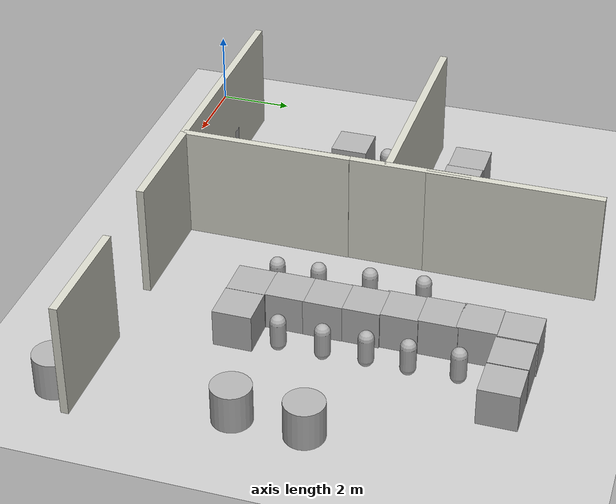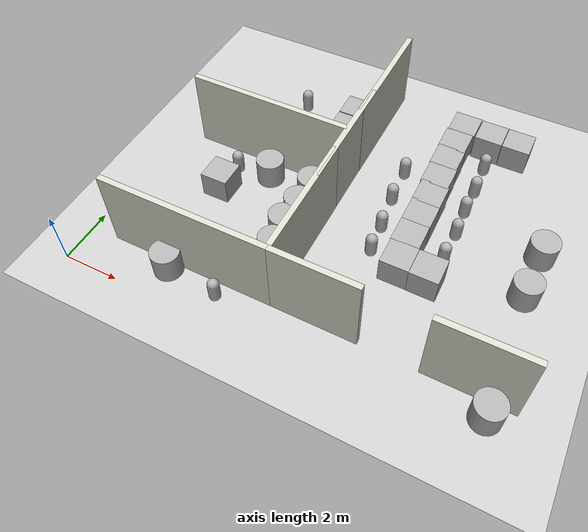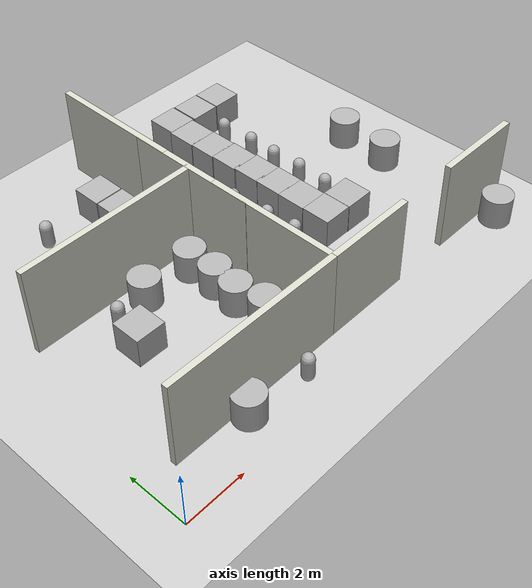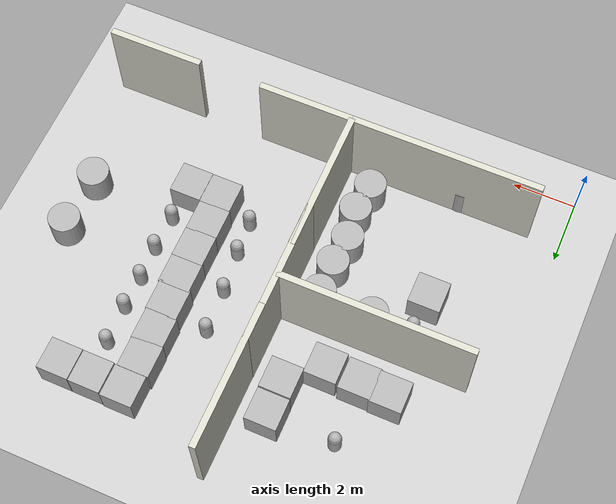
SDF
<sdf version="1.10">
 <world name="default">
  <model name="ground_plane">
   <static>true</static>
   <link name="link">
    <collision name="collision">
     <geometry><plane><normal>0 0 1</normal><size>100 100</size></plane></geometry>
    </collision>
    <visual name="visual">
     <geometry><plane><normal>0 0 1</normal><size>100 100</size></plane></geometry>
     <material>
      <ambient>0.800000012 0.800000012 0.800000012 1</ambient>
      <diffuse>0.800000012 0.800000012 0.800000012 1</diffuse>
      <specular>0.100000001 0.100000001 0.100000001 1</specular>
     </material>
    </visual>
    <inertial>
     <mass>1</mass>
     <inertia><ixx>1</ixx><ixy>0</ixy><ixz>0</ixz><iyy>1</iyy><iyz>0</iyz><izz>1</izz></inertia>
    </inertial>
   </link>
  </model>
  <model name="v_wall_p7_n1">
   <static>true</static>
   <pose>7 3.75 1.5 0 0 0</pose>
   <link name="link">
    <collision name="collision"><geometry><box><size>0.20000000000000001 4.5 3</size></box></geometry></collision>
    <visual name="visual">
     <geometry><box><size>0.20000000000000001 4.5 3</size></box></geometry>
     <material>
      <ambient>0.850000024 0.850000024 0.800000012 1</ambient>
      <diffuse>0.850000024 0.850000024 0.800000012 1</diffuse>
     </material>
    </visual>
    <inertial>
     <mass>1</mass>
     <inertia><ixx>1</ixx><ixy>0</ixy><ixz>0</ixz><iyy>1</iyy><iyz>0</iyz><izz>1</izz></inertia>
    </inertial>
   </link>
  </model>
  <model name="v_wall_p7_n2">
   <static>true</static>
   <pose>7 10.25 1.5 0 0 0</pose>
   <link name="link">
    <collision name="collision"><geometry><box><size>0.20000000000000001 4.5 3</size></box></geometry></collision>
    <visual name="visual">
     <geometry><box><size>0.20000000000000001 4.5 3</size></box></geometry>
     <material>
      <ambient>0.850000024 0.850000024 0.800000012 1</ambient>
      <diffuse>0.850000024 0.850000024 0.800000012 1</diffuse>
     </material>
    </visual>
    <inertial>
     <mass>1</mass>
     <inertia><ixx>1</ixx><ixy>0</ixy><ixz>0</ixz><iyy>1</iyy><iyz>0</iyz><izz>1</izz></inertia>
    </inertial>
   </link>
  </model>
  <model name="h_wall_p1_5_seg2_2">
   <static>true</static>
   <pose>4 1.5 1.5 0 0 0</pose>
   <link name="link">
    <collision name="collision"><geometry><box><size>6 0.20000000000000001 3</size></box></geometry></collision>
    <visual name="visual">
     <geometry><box><size>6 0.20000000000000001 3</size></box></geometry>
     <material>
      <ambient>0.850000024 0.850000024 0.800000012 1</ambient>
      <diffuse>0.850000024 0.850000024 0.800000012 1</diffuse>
     </material>
    </visual>
    <inertial>
     <mass>1</mass>
     <inertia><ixx>1</ixx><ixy>0</ixy><ixz>0</ixz><iyy>1</iyy><iyz>0</iyz><izz>1</izz></inertia>
    </inertial>
   </link>
  </model>
  <model name="h_wall_p1_5_seg3_1">
   <static>true</static>
   <pose>8.5 1.5 1.5 0 0 0</pose>
   <link name="link">
    <collision name="collision"><geometry><box><size>3 0.20000000000000001 3</size></box></geometry></collision>
    <visual name="visual">
     <geometry><box><size>3 0.20000000000000001 3</size></box></geometry>
     <material>
      <ambient>0.850000024 0.850000024 0.800000012 1</ambient>
      <diffuse>0.850000024 0.850000024 0.800000012 1</diffuse>
     </material>
    </visual>
    <inertial>
     <mass>1</mass>
     <inertia><ixx>1</ixx><ixy>0</ixy><ixz>0</ixz><iyy>1</iyy><iyz>0</iyz><izz>1</izz></inertia>
    </inertial>
   </link>
  </model>
  <model name="h_wall_p1_5_seg3_2">
   <static>true</static>
   <pose>13.5 1.5 1.5 0 0 0</pose>
   <link name="link">
    <collision name="collision"><geometry><box><size>3 0.20000000000000001 3</size></box></geometry></collision>
    <visual name="visual">
     <geometry><box><size>3 0.20000000000000001 3</size></box></geometry>
     <material>
      <ambient>0.850000024 0.850000024 0.800000012 1</ambient>
      <diffuse>0.850000024 0.850000024 0.800000012 1</diffuse>
     </material>
    </visual>
    <inertial>
     <mass>1</mass>
     <inertia><ixx>1</ixx><ixy>0</ixy><ixz>0</ixz><iyy>1</iyy><iyz>0</iyz><izz>1</izz></inertia>
    </inertial>
   </link>
  </model>
  <model name="h_wall_p7_seg2">
   <static>true</static>
   <pose>4 7 1.5 0 0 0</pose>
   <link name="link">
    <collision name="collision"><geometry><box><size>6 0.20000000000000001 3</size></box></geometry></collision>
    <visual name="visual">
     <geometry><box><size>6 0.20000000000000001 3</size></box></geometry>
     <material>
      <ambient>0.850000024 0.850000024 0.800000012 1</ambient>
      <diffuse>0.850000024 0.850000024 0.800000012 1</diffuse>
     </material>
    </visual>
    <inertial>
     <mass>1</mass>
     <inertia><ixx>1</ixx><ixy>0</ixy><ixz>0</ixz><iyy>1</iyy><iyz>0</iyz><izz>1</izz></inertia>
    </inertial>
   </link>
  </model>
  <model name="v_wall_m7_n1_2">
   <static>true</static>
   <pose>6.9918575274214811 6.8837710487002894 1.5 0 0 0</pose>
   <link name="link">
    <collision name="collision"><geometry><box><size>0.20000000000000001 4.5 3</size></box></geometry></collision>
    <visual name="visual">
     <geometry><box><size>0.20000000000000001 4.5 3</size></box></geometry>
     <material>
      <ambient>0.850000024 0.850000024 0.800000012 1</ambient>
      <diffuse>0.850000024 0.850000024 0.800000012 1</diffuse>
     </material>
    </visual>
    <inertial>
     <mass>1</mass>
     <inertia><ixx>1</ixx><ixy>0</ixy><ixz>0</ixz><iyy>1</iyy><iyz>0</iyz><izz>1</izz></inertia>
    </inertial>
   </link>
  </model>
  <model name="box_13">
   <static>true</static>
   <pose>10.010048797174466 11.151598105228063 0.5 0 0 0</pose>
   <link name="box_link">
    <inertial>
     <inertia><ixx>0.16666</ixx><ixy>0</ixy><ixz>0</ixz><iyy>0.16666</iyy><iyz>0</iyz><izz>0.16666</izz></inertia>
     <mass>1</mass>
    </inertial>
    <collision name="box_collision"><geometry><box><size>1 1 1</size></box></geometry></collision>
    <visual name="box_visual">
     <geometry><box><size>1 1 1</size></box></geometry>
     <material>
      <ambient>0.300000012 0.300000012 0.300000012 1</ambient>
      <diffuse>0.699999988 0.699999988 0.699999988 1</diffuse>
      <specular>1 1 1 1</specular>
     </material>
    </visual>
   </link>
   <static>false</static>
  </model>
  <model name="box_14">
   <static>true</static>
   <pose>11.046913108626994 11.125156670904467 0.5 0 0 0</pose>
   <link name="box_link">
    <inertial>
     <inertia><ixx>0.16666</ixx><ixy>0</ixy><ixz>0</ixz><iyy>0.16666</iyy><iyz>0</iyz><izz>0.16666</izz></inertia>
     <mass>1</mass>
    </inertial>
    <collision name="box_collision"><geometry><box><size>1 1 1</size></box></geometry></collision>
    <visual name="box_visual">
     <geometry><box><size>1 1 1</size></box></geometry>
     <material>
      <ambient>0.300000012 0.300000012 0.300000012 1</ambient>
      <diffuse>0.699999988 0.699999988 0.699999988 1</diffuse>
      <specular>1 1 1 1</specular>
     </material>
    </visual>
   </link>
   <static>false</static>
  </model>
  <model name="box_15">
   <static>true</static>
   <pose>9.9661066364397808 10.147833265297342 0.5 0 0 0</pose>
   <link name="box_link">
    <inertial>
     <inertia><ixx>0.16666</ixx><ixy>0</ixy><ixz>0</ixz><iyy>0.16666</iyy><iyz>0</iyz><izz>0.16666</izz></inertia>
     <mass>1</mass>
    </inertial>
    <collision name="box_collision"><geometry><box><size>1 1 1</size></box></geometry></collision>
    <visual name="box_visual">
     <geometry><box><size>1 1 1</size></box></geometry>
     <material>
      <ambient>0.300000012 0.300000012 0.300000012 1</ambient>
      <diffuse>0.699999988 0.699999988 0.699999988 1</diffuse>
      <specular>1 1 1 1</specular>
     </material>
    </visual>
   </link>
   <static>false</static>
  </model>
  <model name="box_16">
   <static>true</static>
   <pose>9.9857350545725847 9.2109030290672536 0.5 0 0 0</pose>
   <link name="box_link">
    <inertial>
     <inertia><ixx>0.16666</ixx><ixy>0</ixy><ixz>0</ixz><iyy>0.16666</iyy><iyz>0</iyz><izz>0.16666</izz></inertia>
     <mass>1</mass>
    </inertial>
    <collision name="box_collision"><geometry><box><size>1 1 1</size></box></geometry></collision>
    <visual name="box_visual">
     <geometry><box><size>1 1 1</size></box></geometry>
     <material>
      <ambient>0.300000012 0.300000012 0.300000012 1</ambient>
      <diffuse>0.699999988 0.699999988 0.699999988 1</diffuse>
      <specular>1 1 1 1</specular>
     </material>
    </visual>
   </link>
   <static>false</static>
  </model>
  <model name="box_17">
   <static>true</static>
   <pose>10.013184623506859 8.2339631240693194 0.5 0 0 0</pose>
   <link name="box_link">
    <inertial>
     <inertia><ixx>0.16666</ixx><ixy>0</ixy><ixz>0</ixz><iyy>0.16666</iyy><iyz>0</iyz><izz>0.16666</izz></inertia>
     <mass>1</mass>
    </inertial>
    <collision name="box_collision"><geometry><box><size>1 1 1</size></box></geometry></collision>
    <visual name="box_visual">
     <geometry><box><size>1 1 1</size></box></geometry>
     <material>
      <ambient>0.300000012 0.300000012 0.300000012 1</ambient>
      <diffuse>0.699999988 0.699999988 0.699999988 1</diffuse>
      <specular>1 1 1 1</specular>
     </material>
    </visual>
   </link>
   <static>false</static>
  </model>
  <model name="box_18">
   <static>true</static>
   <pose>10.05573495738118 7.2921293372457345 0.5 0 0 0</pose>
   <link name="box_link">
    <inertial>
     <inertia><ixx>0.16666</ixx><ixy>0</ixy><ixz>0</ixz><iyy>0.16666</iyy><iyz>0</iyz><izz>0.16666</izz></inertia>
     <mass>1</mass>
    </inertial>
    <collision name="box_collision"><geometry><box><size>1 1 1</size></box></geometry></collision>
    <visual name="box_visual">
     <geometry><box><size>1 1 1</size></box></geometry>
     <material>
      <ambient>0.300000012 0.300000012 0.300000012 1</ambient>
      <diffuse>0.699999988 0.699999988 0.699999988 1</diffuse>
      <specular>1 1 1 1</specular>
     </material>
    </visual>
   </link>
   <static>false</static>
  </model>
  <model name="box_19">
   <static>true</static>
   <pose>10.066059749327419 6.3516986142958869 0.5 0 0 0</pose>
   <link name="box_link">
    <inertial>
     <inertia><ixx>0.16666</ixx><ixy>0</ixy><ixz>0</ixz><iyy>0.16666</iyy><iyz>0</iyz><izz>0.16666</izz></inertia>
     <mass>1</mass>
    </inertial>
    <collision name="box_collision"><geometry><box><size>1 1 1</size></box></geometry></collision>
    <visual name="box_visual">
     <geometry><box><size>1 1 1</size></box></geometry>
     <material>
      <ambient>0.300000012 0.300000012 0.300000012 1</ambient>
      <diffuse>0.699999988 0.699999988 0.699999988 1</diffuse>
      <specular>1 1 1 1</specular>
     </material>
    </visual>
   </link>
   <static>false</static>
  </model>
  <model name="box_20">
   <static>true</static>
   <pose>10.063444249058113 5.3805889528067974 0.5 0 0 0</pose>
   <link name="box_link">
    <inertial>
     <inertia><ixx>0.16666</ixx><ixy>0</ixy><ixz>0</ixz><iyy>0.16666</iyy><iyz>0</iyz><izz>0.16666</izz></inertia>
     <mass>1</mass>
    </inertial>
    <collision name="box_collision"><geometry><box><size>1 1 1</size></box></geometry></collision>
    <visual name="box_visual">
     <geometry><box><size>1 1 1</size></box></geometry>
     <material>
      <ambient>0.300000012 0.300000012 0.300000012 1</ambient>
      <diffuse>0.699999988 0.699999988 0.699999988 1</diffuse>
      <specular>1 1 1 1</specular>
     </material>
    </visual>
   </link>
   <static>false</static>
  </model>
  <model name="box_21">
   <static>true</static>
   <pose>10.084350873914577 4.3951422807863514 0.5 0 0 0</pose>
   <link name="box_link">
    <inertial>
     <inertia><ixx>0.16666</ixx><ixy>0</ixy><ixz>0</ixz><iyy>0.16666</iyy><iyz>0</iyz><izz>0.16666</izz></inertia>
     <mass>1</mass>
    </inertial>
    <collision name="box_collision"><geometry><box><size>1 1 1</size></box></geometry></collision>
    <visual name="box_visual">
     <geometry><box><size>1 1 1</size></box></geometry>
     <material>
      <ambient>0.300000012 0.300000012 0.300000012 1</ambient>
      <diffuse>0.699999988 0.699999988 0.699999988 1</diffuse>
      <specular>1 1 1 1</specular>
     </material>
    </visual>
   </link>
   <static>false</static>
  </model>
  <model name="box_22">
   <static>true</static>
   <pose>11.088239709250676 4.3853571197557635 0.5 0 0 0</pose>
   <link name="box_link">
    <inertial>
     <inertia><ixx>0.16666</ixx><ixy>0</ixy><ixz>0</ixz><iyy>0.16666</iyy><iyz>0</iyz><izz>0.16666</izz></inertia>
     <mass>1</mass>
    </inertial>
    <collision name="box_collision"><geometry><box><size>1 1 1</size></box></geometry></collision>
    <visual name="box_visual">
     <geometry><box><size>1 1 1</size></box></geometry>
     <material>
      <ambient>0.300000012 0.300000012 0.300000012 1</ambient>
      <diffuse>0.699999988 0.699999988 0.699999988 1</diffuse>
      <specular>1 1 1 1</specular>
     </material>
    </visual>
   </link>
   <static>false</static>
  </model>
  <model name="box_23">
   <static>true</static>
   <pose>12.068115340238233 11.12088528086899 0.5 0 0 0</pose>
   <link name="box_link">
    <inertial>
     <inertia><ixx>0.16666</ixx><ixy>0</ixy><ixz>0</ixz><iyy>0.16666</iyy><iyz>0</iyz><izz>0.16666</izz></inertia>
     <mass>1</mass>
    </inertial>
    <collision name="box_collision"><geometry><box><size>1 1 1</size></box></geometry></collision>
    <visual name="box_visual">
     <geometry><box><size>1 1 1</size></box></geometry>
     <material>
      <ambient>0.300000012 0.300000012 0.300000012 1</ambient>
      <diffuse>0.699999988 0.699999988 0.699999988 1</diffuse>
      <specular>1 1 1 1</specular>
     </material>
    </visual>
   </link>
   <static>false</static>
  </model>
  <model name="capsule_29">
   <static>true</static>
   <pose>11.237166118308775 9.9219984508322057 0.5 0 0 0</pose>
   <link name="capsule_link">
    <inertial>
     <inertia>
      <ixx>0.074153999999999998</ixx>
      <ixy>0</ixy>
      <ixz>0</ixz>
      <iyy>0.074153999999999998</iyy>
      <iyz>0</iyz>
      <izz>0.018769000000000001</izz>
     </inertia>
     <mass>1</mass>
    </inertial>
    <collision name="capsule_collision">
     <geometry>
      <capsule><radius>0.20000000000000001</radius><length>0.59999999999999998</length></capsule>
     </geometry>
    </collision>
    <visual name="capsule_visual">
     <geometry>
      <capsule><radius>0.20000000000000001</radius><length>0.59999999999999998</length></capsule>
     </geometry>
     <material>
      <ambient>0.300000012 0.300000012 0.300000012 1</ambient>
      <diffuse>0.699999988 0.699999988 0.699999988 1</diffuse>
      <specular>1 1 1 1</specular>
     </material>
    </visual>
   </link>
   <static>false</static>
  </model>
  <model name="capsule_30">
   <static>true</static>
   <pose>11.282579255198577 8.7054279380323063 0.5 0 0 0</pose>
   <link name="capsule_link">
    <inertial>
     <inertia>
      <ixx>0.074153999999999998</ixx>
      <ixy>0</ixy>
      <ixz>0</ixz>
      <iyy>0.074153999999999998</iyy>
      <iyz>0</iyz>
      <izz>0.018769000000000001</izz>
     </inertia>
     <mass>1</mass>
    </inertial>
    <collision name="capsule_collision">
     <geometry>
      <capsule><radius>0.20000000000000001</radius><length>0.59999999999999998</length></capsule>
     </geometry>
    </collision>
    <visual name="capsule_visual">
     <geometry>
      <capsule><radius>0.20000000000000001</radius><length>0.59999999999999998</length></capsule>
     </geometry>
     <material>
      <ambient>0.300000012 0.300000012 0.300000012 1</ambient>
      <diffuse>0.699999988 0.699999988 0.699999988 1</diffuse>
      <specular>1 1 1 1</specular>
     </material>
    </visual>
   </link>
   <static>false</static>
  </model>
  <model name="capsule_31">
   <static>true</static>
   <pose>11.265270557068733 7.6634579458774157 0.5 0 0 0</pose>
   <link name="capsule_link">
    <inertial>
     <inertia>
      <ixx>0.074153999999999998</ixx>
      <ixy>0</ixy>
      <ixz>0</ixz>
      <iyy>0.074153999999999998</iyy>
      <iyz>0</iyz>
      <izz>0.018769000000000001</izz>
     </inertia>
     <mass>1</mass>
    </inertial>
    <collision name="capsule_collision">
     <geometry>
      <capsule><radius>0.20000000000000001</radius><length>0.59999999999999998</length></capsule>
     </geometry>
    </collision>
    <visual name="capsule_visual">
     <geometry>
      <capsule><radius>0.20000000000000001</radius><length>0.59999999999999998</length></capsule>
     </geometry>
     <material>
      <ambient>0.300000012 0.300000012 0.300000012 1</ambient>
      <diffuse>0.699999988 0.699999988 0.699999988 1</diffuse>
      <specular>1 1 1 1</specular>
     </material>
    </visual>
   </link>
   <static>false</static>
  </model>
  <model name="capsule_32">
   <static>true</static>
   <pose>11.316495259346981 6.5940693354812741 0.5 0 0 0</pose>
   <link name="capsule_link">
    <inertial>
     <inertia>
      <ixx>0.074153999999999998</ixx>
      <ixy>0</ixy>
      <ixz>0</ixz>
      <iyy>0.074153999999999998</iyy>
      <iyz>0</iyz>
      <izz>0.018769000000000001</izz>
     </inertia>
     <mass>1</mass>
    </inertial>
    <collision name="capsule_collision">
     <geometry>
      <capsule><radius>0.20000000000000001</radius><length>0.59999999999999998</length></capsule>
     </geometry>
    </collision>
    <visual name="capsule_visual">
     <geometry>
      <capsule><radius>0.20000000000000001</radius><length>0.59999999999999998</length></capsule>
     </geometry>
     <material>
      <ambient>0.300000012 0.300000012 0.300000012 1</ambient>
      <diffuse>0.699999988 0.699999988 0.699999988 1</diffuse>
      <specular>1 1 1 1</specular>
     </material>
    </visual>
   </link>
   <static>false</static>
  </model>
  <model name="capsule_33">
   <static>true</static>
   <pose>11.285251332191134 5.4652520159041966 0.5 0 0 0</pose>
   <link name="capsule_link">
    <inertial>
     <inertia>
      <ixx>0.074153999999999998</ixx>
      <ixy>0</ixy>
      <ixz>0</ixz>
      <iyy>0.074153999999999998</iyy>
      <iyz>0</iyz>
      <izz>0.018769000000000001</izz>
     </inertia>
     <mass>1</mass>
    </inertial>
    <collision name="capsule_collision">
     <geometry>
      <capsule><radius>0.20000000000000001</radius><length>0.59999999999999998</length></capsule>
     </geometry>
    </collision>
    <visual name="capsule_visual">
     <geometry>
      <capsule><radius>0.20000000000000001</radius><length>0.59999999999999998</length></capsule>
     </geometry>
     <material>
      <ambient>0.300000012 0.300000012 0.300000012 1</ambient>
      <diffuse>0.699999988 0.699999988 0.699999988 1</diffuse>
      <specular>1 1 1 1</specular>
     </material>
    </visual>
   </link>
   <static>false</static>
  </model>
  <model name="capsule_34">
   <static>true</static>
   <pose>8.7127064609053146 8.4362348053982217 0.5 0 0 0</pose>
   <link name="capsule_link">
    <inertial>
     <inertia>
      <ixx>0.074153999999999998</ixx>
      <ixy>0</ixy>
      <ixz>0</ixz>
      <iyy>0.074153999999999998</iyy>
      <iyz>0</iyz>
      <izz>0.018769000000000001</izz>
     </inertia>
     <mass>1</mass>
    </inertial>
    <collision name="capsule_collision">
     <geometry>
      <capsule><radius>0.20000000000000001</radius><length>0.59999999999999998</length></capsule>
     </geometry>
    </collision>
    <visual name="capsule_visual">
     <geometry>
      <capsule><radius>0.20000000000000001</radius><length>0.59999999999999998</length></capsule>
     </geometry>
     <material>
      <ambient>0.300000012 0.300000012 0.300000012 1</ambient>
      <diffuse>0.699999988 0.699999988 0.699999988 1</diffuse>
      <specular>1 1 1 1</specular>
     </material>
    </visual>
   </link>
   <static>false</static>
  </model>
  <model name="capsule_35">
   <static>true</static>
   <pose>8.7839059614428194 7.0638986288198771 0.5 0 0 0</pose>
   <link name="capsule_link">
    <inertial>
     <inertia>
      <ixx>0.074153999999999998</ixx>
      <ixy>0</ixy>
      <ixz>0</ixz>
      <iyy>0.074153999999999998</iyy>
      <iyz>0</iyz>
      <izz>0.018769000000000001</izz>
     </inertia>
     <mass>1</mass>
    </inertial>
    <collision name="capsule_collision">
     <geometry>
      <capsule><radius>0.20000000000000001</radius><length>0.59999999999999998</length></capsule>
     </geometry>
    </collision>
    <visual name="capsule_visual">
     <geometry>
      <capsule><radius>0.20000000000000001</radius><length>0.59999999999999998</length></capsule>
     </geometry>
     <material>
      <ambient>0.300000012 0.300000012 0.300000012 1</ambient>
      <diffuse>0.699999988 0.699999988 0.699999988 1</diffuse>
      <specular>1 1 1 1</specular>
     </material>
    </visual>
   </link>
   <static>false</static>
  </model>
  <model name="capsule_36">
   <static>true</static>
   <pose>8.9310092815792075 5.7638788317313612 0.5 0 0 0</pose>
   <link name="capsule_link">
    <inertial>
     <inertia>
      <ixx>0.074153999999999998</ixx>
      <ixy>0</ixy>
      <ixz>0</ixz>
      <iyy>0.074153999999999998</iyy>
      <iyz>0</iyz>
      <izz>0.018769000000000001</izz>
     </inertia>
     <mass>1</mass>
    </inertial>
    <collision name="capsule_collision">
     <geometry>
      <capsule><radius>0.20000000000000001</radius><length>0.59999999999999998</length></capsule>
     </geometry>
    </collision>
    <visual name="capsule_visual">
     <geometry>
      <capsule><radius>0.20000000000000001</radius><length>0.59999999999999998</length></capsule>
     </geometry>
     <material>
      <ambient>0.300000012 0.300000012 0.300000012 1</ambient>
      <diffuse>0.699999988 0.699999988 0.699999988 1</diffuse>
      <specular>1 1 1 1</specular>
     </material>
    </visual>
   </link>
   <static>false</static>
  </model>
  <model name="capsule_37">
   <static>true</static>
   <pose>9.0087933500075419 4.6957341768782213 0.5 0 0 0</pose>
   <link name="capsule_link">
    <inertial>
     <inertia>
      <ixx>0.074153999999999998</ixx>
      <ixy>0</ixy>
      <ixz>0</ixz>
      <iyy>0.074153999999999998</iyy>
      <iyz>0</iyz>
      <izz>0.018769000000000001</izz>
     </inertia>
     <mass>1</mass>
    </inertial>
    <collision name="capsule_collision">
     <geometry>
      <capsule><radius>0.20000000000000001</radius><length>0.59999999999999998</length></capsule>
     </geometry>
    </collision>
    <visual name="capsule_visual">
     <geometry>
      <capsule><radius>0.20000000000000001</radius><length>0.59999999999999998</length></capsule>
     </geometry>
     <material>
      <ambient>0.300000012 0.300000012 0.300000012 1</ambient>
      <diffuse>0.699999988 0.699999988 0.699999988 1</diffuse>
      <specular>1 1 1 1</specular>
     </material>
    </visual>
   </link>
   <static>false</static>
  </model>
  <model name="cylinder_7">
   <static>true</static>
   <pose>14.052474520168612 5.2639746708152577 0.5 0 0 0</pose>
   <link name="cylinder_link">
    <inertial>
     <inertia>
      <ixx>0.14580000000000001</ixx>
      <ixy>0</ixy>
      <ixz>0</ixz>
      <iyy>0.14580000000000001</iyy>
      <iyz>0</iyz>
      <izz>0.125</izz>
     </inertia>
     <mass>1</mass>
    </inertial>
    <collision name="cylinder_collision">
     <geometry><cylinder><radius>0.5</radius><length>1</length></cylinder></geometry>
    </collision>
    <visual name="cylinder_visual">
     <geometry><cylinder><radius>0.5</radius><length>1</length></cylinder></geometry>
     <material>
      <ambient>0.300000012 0.300000012 0.300000012 1</ambient>
      <diffuse>0.699999988 0.699999988 0.699999988 1</diffuse>
      <specular>1 1 1 1</specular>
     </material>
    </visual>
   </link>
   <static>false</static>
  </model>
  <model name="cylinder_8">
   <static>true</static>
   <pose>14.117435471905376 7.0298634675435903 0.5 0 0 0</pose>
   <link name="cylinder_link">
    <inertial>
     <inertia>
      <ixx>0.14580000000000001</ixx>
      <ixy>0</ixy>
      <ixz>0</ixz>
      <iyy>0.14580000000000001</iyy>
      <iyz>0</iyz>
      <izz>0.125</izz>
     </inertia>
     <mass>1</mass>
    </inertial>
    <collision name="cylinder_collision">
     <geometry><cylinder><radius>0.5</radius><length>1</length></cylinder></geometry>
    </collision>
    <visual name="cylinder_visual">
     <geometry><cylinder><radius>0.5</radius><length>1</length></cylinder></geometry>
     <material>
      <ambient>0.300000012 0.300000012 0.300000012 1</ambient>
      <diffuse>0.699999988 0.699999988 0.699999988 1</diffuse>
      <specular>1 1 1 1</specular>
     </material>
    </visual>
   </link>
   <static>false</static>
  </model>
  <model name="cylinder_22">
   <static>true</static>
   <pose>14.182751326065365 0.90644257742748913 0.5 0 0 0</pose>
   <link name="cylinder_link">
    <inertial>
     <inertia>
      <ixx>0.14580000000000001</ixx>
      <ixy>0</ixy>
      <ixz>0</ixz>
      <iyy>0.14580000000000001</iyy>
      <iyz>0</iyz>
      <izz>0.125</izz>
     </inertia>
     <mass>1</mass>
    </inertial>
    <collision name="cylinder_collision">
     <geometry><cylinder><radius>0.5</radius><length>1</length></cylinder></geometry>
    </collision>
    <visual name="cylinder_visual">
     <geometry><cylinder><radius>0.5</radius><length>1</length></cylinder></geometry>
     <material>
      <ambient>0.300000012 0.300000012 0.300000012 1</ambient>
      <diffuse>0.699999988 0.699999988 0.699999988 1</diffuse>
      <specular>1 1 1 1</specular>
     </material>
    </visual>
   </link>
   <static>false</static>
  </model>
  <model name="capsule_42">
   <static>true</static>
   <pose>5.3129000663757324 0.85683929920196533 0.5 0 0 0</pose>
   <link name="capsule_link">
    <inertial>
     <inertia>
      <ixx>0.074153999999999998</ixx>
      <ixy>0</ixy>
      <ixz>0</ixz>
      <iyy>0.074153999999999998</iyy>
      <iyz>0</iyz>
      <izz>0.018769000000000001</izz>
     </inertia>
     <mass>1</mass>
    </inertial>
    <collision name="capsule_collision">
     <geometry>
      <capsule><radius>0.20000000000000001</radius><length>0.59999999999999998</length></capsule>
     </geometry>
    </collision>
    <visual name="capsule_visual">
     <geometry>
      <capsule><radius>0.20000000000000001</radius><length>0.59999999999999998</length></capsule>
     </geometry>
     <material>
      <ambient>0.300000012 0.300000012 0.300000012 1</ambient>
      <diffuse>0.699999988 0.699999988 0.699999988 1</diffuse>
      <specular>1 1 1 1</specular>
     </material>
    </visual>
   </link>
   <static>false</static>
  </model>
  <model name="cylinder_23">
   <static>true</static>
   <pose>3.3374652627816768 1.1223045949643375 0.5 0 0 0</pose>
   <link name="cylinder_link">
    <inertial>
     <inertia>
      <ixx>0.14580000000000001</ixx>
      <ixy>0</ixy>
      <ixz>0</ixz>
      <iyy>0.14580000000000001</iyy>
      <iyz>0</iyz>
      <izz>0.125</izz>
     </inertia>
     <mass>1</mass>
    </inertial>
    <collision name="cylinder_collision">
     <geometry><cylinder><radius>0.5</radius><length>1</length></cylinder></geometry>
    </collision>
    <visual name="cylinder_visual">
     <geometry><cylinder><radius>0.5</radius><length>1</length></cylinder></geometry>
     <material>
      <ambient>0.300000012 0.300000012 0.300000012 1</ambient>
      <diffuse>0.699999988 0.699999988 0.699999988 1</diffuse>
      <specular>1 1 1 1</specular>
     </material>
    </visual>
   </link>
   <static>false</static>
  </model>
  <model name="box_27">
   <static>true</static>
   <pose>4.9690530699529187 8.2151905033070776 0.5 0 0 0</pose>
   <link name="box_link">
    <inertial>
     <inertia><ixx>0.16666</ixx><ixy>0</ixy><ixz>0</ixz><iyy>0.16666</iyy><iyz>0</iyz><izz>0.16666</izz></inertia>
     <mass>1</mass>
    </inertial>
    <collision name="box_collision"><geometry><box><size>1 1 1</size></box></geometry></collision>
    <visual name="box_visual">
     <geometry><box><size>1 1 1</size></box></geometry>
     <material>
      <ambient>0.300000012 0.300000012 0.300000012 1</ambient>
      <diffuse>0.699999988 0.699999988 0.699999988 1</diffuse>
      <specular>1 1 1 1</specular>
     </material>
    </visual>
   </link>
   <static>false</static>
  </model>
  <model name="box_28">
   <static>true</static>
   <pose>3.8979285782797906 8.2646962160753326 0.5 0 0 0</pose>
   <link name="box_link">
    <inertial>
     <inertia><ixx>0.16666</ixx><ixy>0</ixy><ixz>0</ixz><iyy>0.16666</iyy><iyz>0</iyz><izz>0.16666</izz></inertia>
     <mass>1</mass>
    </inertial>
    <collision name="box_collision"><geometry><box><size>1 1 1</size></box></geometry></collision>
    <visual name="box_visual">
     <geometry><box><size>1 1 1</size></box></geometry>
     <material>
      <ambient>0.300000012 0.300000012 0.300000012 1</ambient>
      <diffuse>0.699999988 0.699999988 0.699999988 1</diffuse>
      <specular>1 1 1 1</specular>
     </material>
    </visual>
   </link>
   <static>false</static>
  </model>
  <model name="box_29">
   <static>true</static>
   <pose>2.927449638805383 8.2927050672708251 0.5 0 0 0</pose>
   <link name="box_link">
    <inertial>
     <inertia><ixx>0.16666</ixx><ixy>0</ixy><ixz>0</ixz><iyy>0.16666</iyy><iyz>0</iyz><izz>0.16666</izz></inertia>
     <mass>1</mass>
    </inertial>
    <collision name="box_collision"><geometry><box><size>1 1 1</size></box></geometry></collision>
    <visual name="box_visual">
     <geometry><box><size>1 1 1</size></box></geometry>
     <material>
      <ambient>0.300000012 0.300000012 0.300000012 1</ambient>
      <diffuse>0.699999988 0.699999988 0.699999988 1</diffuse>
      <specular>1 1 1 1</specular>
     </material>
    </visual>
   </link>
   <static>false</static>
  </model>
  <model name="box_30">
   <static>true</static>
   <pose>5.9774365773224876 9.1187945552109877 0.5 0 0 0</pose>
   <link name="box_link">
    <inertial>
     <inertia><ixx>0.16666</ixx><ixy>0</ixy><ixz>0</ixz><iyy>0.16666</iyy><iyz>0</iyz><izz>0.16666</izz></inertia>
     <mass>1</mass>
    </inertial>
    <collision name="box_collision"><geometry><box><size>1 1 1</size></box></geometry></collision>
    <visual name="box_visual">
     <geometry><box><size>1 1 1</size></box></geometry>
     <material>
      <ambient>0.300000012 0.300000012 0.300000012 1</ambient>
      <diffuse>0.699999988 0.699999988 0.699999988 1</diffuse>
      <specular>1 1 1 1</specular>
     </material>
    </visual>
   </link>
   <static>false</static>
  </model>
  <model name="box_31">
   <static>true</static>
   <pose>5.9658136689576544 10.151896877699661 0.5 0 0 0</pose>
   <link name="box_link">
    <inertial>
     <inertia><ixx>0.16666</ixx><ixy>0</ixy><ixz>0</ixz><iyy>0.16666</iyy><iyz>0</iyz><izz>0.16666</izz></inertia>
     <mass>1</mass>
    </inertial>
    <collision name="box_collision"><geometry><box><size>1 1 1</size></box></geometry></collision>
    <visual name="box_visual">
     <geometry><box><size>1 1 1</size></box></geometry>
     <material>
      <ambient>0.300000012 0.300000012 0.300000012 1</ambient>
      <diffuse>0.699999988 0.699999988 0.699999988 1</diffuse>
      <specular>1 1 1 1</specular>
     </material>
    </visual>
   </link>
   <static>false</static>
  </model>
  <model name="capsule_47">
   <static>true</static>
   <pose>3.8754000833292093 10.135420499344265 0.5 0 0 0</pose>
   <link name="capsule_link">
    <inertial>
     <inertia>
      <ixx>0.074153999999999998</ixx>
      <ixy>0</ixy>
      <ixz>0</ixz>
      <iyy>0.074153999999999998</iyy>
      <iyz>0</iyz>
      <izz>0.018769000000000001</izz>
     </inertia>
     <mass>1</mass>
    </inertial>
    <collision name="capsule_collision">
     <geometry>
      <capsule><radius>0.20000000000000001</radius><length>0.59999999999999998</length></capsule>
     </geometry>
    </collision>
    <visual name="capsule_visual">
     <geometry>
      <capsule><radius>0.20000000000000001</radius><length>0.59999999999999998</length></capsule>
     </geometry>
     <material>
      <ambient>0.300000012 0.300000012 0.300000012 1</ambient>
      <diffuse>0.699999988 0.699999988 0.699999988 1</diffuse>
      <specular>1 1 1 1</specular>
     </material>
    </visual>
   </link>
   <static>false</static>
  </model>
  <model name="cylinder_31">
   <static>true</static>
   <pose>6.0468646373386932 6.1511145275948866 0.5 0 0 0</pose>
   <link name="cylinder_link">
    <inertial>
     <inertia>
      <ixx>0.14580000000000001</ixx>
      <ixy>0</ixy>
      <ixz>0</ixz>
      <iyy>0.14580000000000001</iyy>
      <iyz>0</iyz>
      <izz>0.125</izz>
     </inertia>
     <mass>1</mass>
    </inertial>
    <collision name="cylinder_collision">
     <geometry><cylinder><radius>0.5</radius><length>1</length></cylinder></geometry>
    </collision>
    <visual name="cylinder_visual">
     <geometry><cylinder><radius>0.5</radius><length>1</length></cylinder></geometry>
     <material>
      <ambient>0.300000012 0.300000012 0.300000012 1</ambient>
      <diffuse>0.699999988 0.699999988 0.699999988 1</diffuse>
      <specular>1 1 1 1</specular>
     </material>
    </visual>
   </link>
   <static>false</static>
  </model>
  <model name="cylinder_32">
   <static>true</static>
   <pose>6.0577301979064941 5.1169257164001465 0.5 0 0 0</pose>
   <link name="cylinder_link">
    <inertial>
     <inertia>
      <ixx>0.14580000000000001</ixx>
      <ixy>0</ixy>
      <ixz>0</ixz>
      <iyy>0.14580000000000001</iyy>
      <iyz>0</iyz>
      <izz>0.125</izz>
     </inertia>
     <mass>1</mass>
    </inertial>
    <collision name="cylinder_collision">
     <geometry><cylinder><radius>0.5</radius><length>1</length></cylinder></geometry>
    </collision>
    <visual name="cylinder_visual">
     <geometry><cylinder><radius>0.5</radius><length>1</length></cylinder></geometry>
     <material>
      <ambient>0.300000012 0.300000012 0.300000012 1</ambient>
      <diffuse>0.699999988 0.699999988 0.699999988 1</diffuse>
      <specular>1 1 1 1</specular>
     </material>
    </visual>
   </link>
   <static>false</static>
  </model>
  <model name="cylinder_33">
   <static>true</static>
   <pose>5.9686250686645508 4.1910800933837891 0.5 0 0 0</pose>
   <link name="cylinder_link">
    <inertial>
     <inertia>
      <ixx>0.14580000000000001</ixx>
      <ixy>0</ixy>
      <ixz>0</ixz>
      <iyy>0.14580000000000001</iyy>
      <iyz>0</iyz>
      <izz>0.125</izz>
     </inertia>
     <mass>1</mass>
    </inertial>
    <collision name="cylinder_collision">
     <geometry><cylinder><radius>0.5</radius><length>1</length></cylinder></geometry>
    </collision>
    <visual name="cylinder_visual">
     <geometry><cylinder><radius>0.5</radius><length>1</length></cylinder></geometry>
     <material>
      <ambient>0.300000012 0.300000012 0.300000012 1</ambient>
      <diffuse>0.699999988 0.699999988 0.699999988 1</diffuse>
      <specular>1 1 1 1</specular>
     </material>
    </visual>
   </link>
   <static>false</static>
  </model>
  <model name="cylinder_34">
   <static>true</static>
   <pose>6.1259398460388184 3.1895308494567871 0.5 0 0 0</pose>
   <link name="cylinder_link">
    <inertial>
     <inertia>
      <ixx>0.14580000000000001</ixx>
      <ixy>0</ixy>
      <ixz>0</ixz>
      <iyy>0.14580000000000001</iyy>
      <iyz>0</iyz>
      <izz>0.125</izz>
     </inertia>
     <mass>1</mass>
    </inertial>
    <collision name="cylinder_collision">
     <geometry><cylinder><radius>0.5</radius><length>1</length></cylinder></geometry>
    </collision>
    <visual name="cylinder_visual">
     <geometry><cylinder><radius>0.5</radius><length>1</length></cylinder></geometry>
     <material>
      <ambient>0.300000012 0.300000012 0.300000012 1</ambient>
      <diffuse>0.699999988 0.699999988 0.699999988 1</diffuse>
      <specular>1 1 1 1</specular>
     </material>
    </visual>
   </link>
   <static>false</static>
  </model>
  <model name="cylinder_35">
   <static>true</static>
   <pose>4.3425499430166621 6.2241147968580561 0.5 0 0 0</pose>
   <link name="cylinder_link">
    <inertial>
     <inertia>
      <ixx>0.14580000000000001</ixx>
      <ixy>0</ixy>
      <ixz>0</ixz>
      <iyy>0.14580000000000001</iyy>
      <iyz>0</iyz>
      <izz>0.125</izz>
     </inertia>
     <mass>1</mass>
    </inertial>
    <collision name="cylinder_collision">
     <geometry><cylinder><radius>0.5</radius><length>1</length></cylinder></geometry>
    </collision>
    <visual name="cylinder_visual">
     <geometry><cylinder><radius>0.5</radius><length>1</length></cylinder></geometry>
     <material>
      <ambient>0.300000012 0.300000012 0.300000012 1</ambient>
      <diffuse>0.699999988 0.699999988 0.699999988 1</diffuse>
      <specular>1 1 1 1</specular>
     </material>
    </visual>
   </link>
   <static>false</static>
  </model>
  <model name="cylinder_36">
   <static>true</static>
   <pose>6.0127243995666504 2.2715399265289307 0.5 0 0 0</pose>
   <link name="cylinder_link">
    <inertial>
     <inertia>
      <ixx>0.14580000000000001</ixx>
      <ixy>0</ixy>
      <ixz>0</ixz>
      <iyy>0.14580000000000001</iyy>
      <iyz>0</iyz>
      <izz>0.125</izz>
     </inertia>
     <mass>1</mass>
    </inertial>
    <collision name="cylinder_collision">
     <geometry><cylinder><radius>0.5</radius><length>1</length></cylinder></geometry>
    </collision>
    <visual name="cylinder_visual">
     <geometry><cylinder><radius>0.5</radius><length>1</length></cylinder></geometry>
     <material>
      <ambient>0.300000012 0.300000012 0.300000012 1</ambient>
      <diffuse>0.699999988 0.699999988 0.699999988 1</diffuse>
      <specular>1 1 1 1</specular>
     </material>
    </visual>
   </link>
   <static>false</static>
  </model>
  <model name="box_32">
   <static>true</static>
   <pose>3.0396499633789062 4.967562198638916 0.5 0 0 0</pose>
   <link name="box_link">
    <inertial>
     <inertia><ixx>0.16666</ixx><ixy>0</ixy><ixz>0</ixz><iyy>0.16666</iyy><iyz>0</iyz><izz>0.16666</izz></inertia>
     <mass>1</mass>
    </inertial>
    <collision name="box_collision"><geometry><box><size>1 1 1</size></box></geometry></collision>
    <visual name="box_visual">
     <geometry><box><size>1 1 1</size></box></geometry>
     <material>
      <ambient>0.300000012 0.300000012 0.300000012 1</ambient>
      <diffuse>0.699999988 0.699999988 0.699999988 1</diffuse>
      <specular>1 1 1 1</specular>
     </material>
    </visual>
   </link>
   <static>false</static>
  </model>
  <model name="capsule_55">
   <static>true</static>
   <pose>3.1349255950634447 5.9858296517590457 0.5 0 0 0</pose>
   <link name="capsule_link">
    <inertial>
     <inertia>
      <ixx>0.074153999999999998</ixx>
      <ixy>0</ixy>
      <ixz>0</ixz>
      <iyy>0.074153999999999998</iyy>
      <iyz>0</iyz>
      <izz>0.018769000000000001</izz>
     </inertia>
     <mass>1</mass>
    </inertial>
    <collision name="capsule_collision">
     <geometry>
      <capsule><radius>0.20000000000000001</radius><length>0.59999999999999998</length></capsule>
     </geometry>
    </collision>
    <visual name="capsule_visual">
     <geometry>
      <capsule><radius>0.20000000000000001</radius><length>0.59999999999999998</length></capsule>
     </geometry>
     <material>
      <ambient>0.300000012 0.300000012 0.300000012 1</ambient>
      <diffuse>0.699999988 0.699999988 0.699999988 1</diffuse>
      <specular>1 1 1 1</specular>
     </material>
    </visual>
   </link>
   <static>false</static>
  </model>
 </world>
</sdf>
